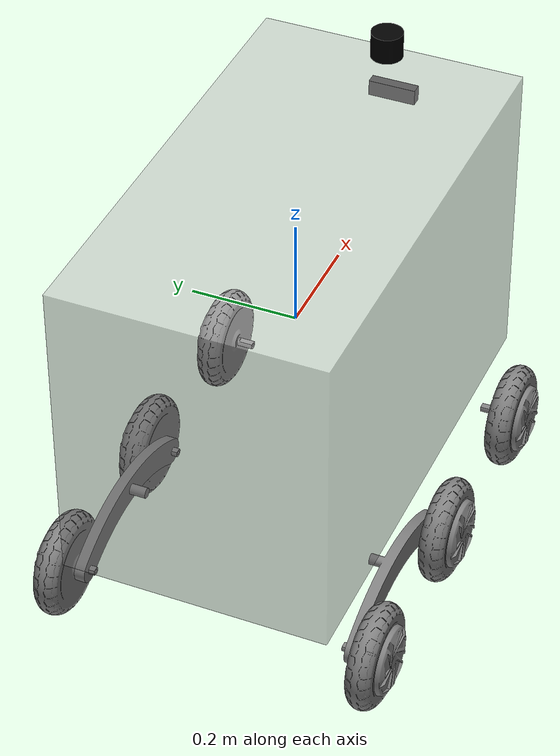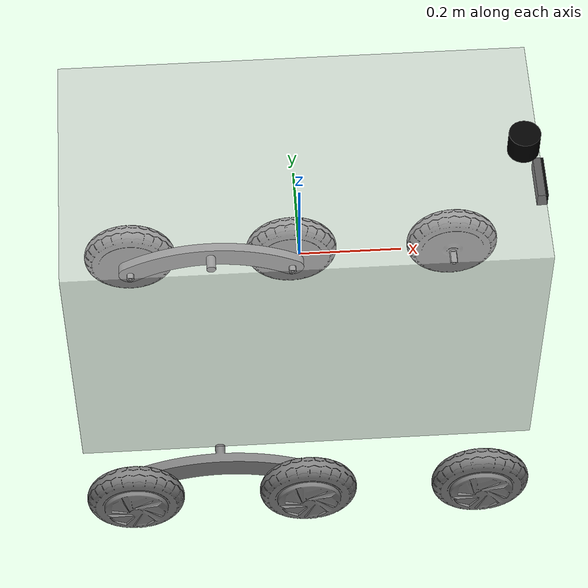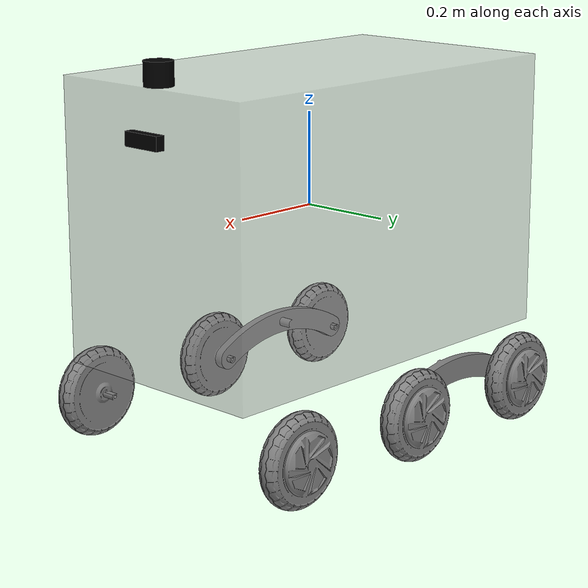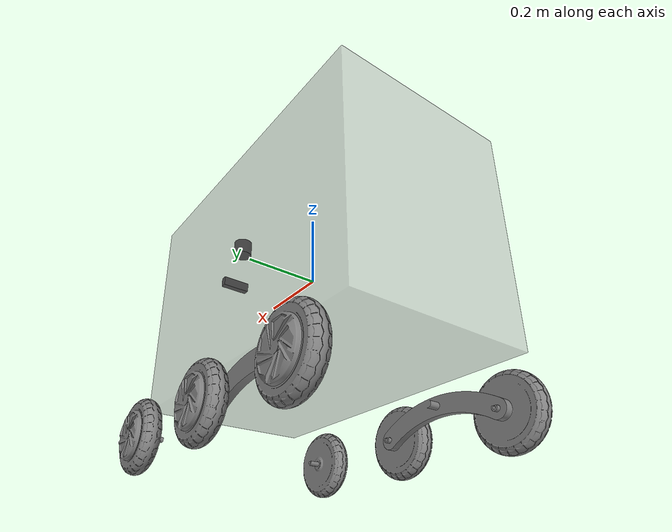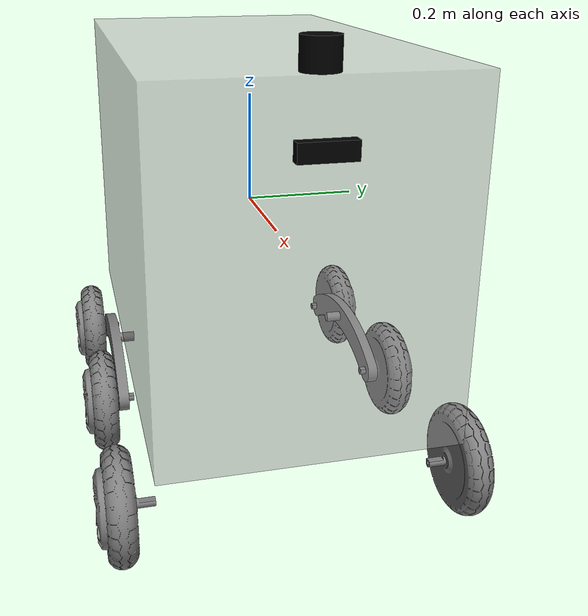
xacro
<?xml version="1.0"?>
<robot name="delivery_robot" xmlns:xacro="http://ros.org/wiki/xacro">

  <!-- Właściwości -->
  <xacro:property name="body_length" value="0.9"/>
  <xacro:property name="body_width" value="0.5"/>
  <xacro:property name="body_height" value="0.6"/>
  <xacro:property name="wheel_radius" value="0.1016"/>
  <xacro:property name="wheel_width" value="0.05"/>
  <xacro:property name="wheel_gap" value="0.35"/>
  <xacro:property name="wheel_y_offset" value="${0.5 * body_width + 0.05}"/>
  <xacro:property name="z_offset" value="${-0.5 * body_height - 0.1}"/>
  <xacro:property name="wheel_mass" value="3.0"/>
  <xacro:property name="boxygo_description_pkg" value="$(find boxygo_description)"/>
  <xacro:property name="boxygo_controllers_pkg" value="$(find boxygo_controllers)"/>

  <!-- Materiały -->
  <material name="black"><color rgba="0 0 0 1"/></material>
  <material name="white"><color rgba="0.7 0.7 0.7 0.5"/></material>
  <material name="grey"><color rgba="0.5 0.5 0.5 1"/></material>

  <!-- Korpus -->
  <link name="base_link">
    <visual>
      <geometry>
        <box size="${body_length} ${body_width} ${body_height}"/>
      </geometry>
      <material name="white"/>
    </visual>
    <collision>
      <geometry>
        <box size="${body_length} ${body_width} ${body_height}"/>
      </geometry>
    </collision>
    <inertial>
      <mass value="20"/>
      <inertia ixx="1" ixy="0" ixz="0" iyy="1" iyz="0" izz="1"/>
    </inertial>
  </link>

  <!-- IMU sensor -->
  <link name="imu_link">
    <inertial>
      <mass value="0.01"/>
      <origin xyz="0 0 0" rpy="0 0 0"/>
      <inertia ixx="1e-5" ixy="0" ixz="0" iyy="1e-5" iyz="0" izz="1e-5"/>
    </inertial>
  </link>
  <joint name="imu_joint" type="fixed">
    <parent link="base_link"/>
    <child link="imu_link"/>
    <origin xyz="0 0 ${body_height/2}" rpy="0 0 0"/>
  </joint>

  <gazebo reference="imu_link">
    <sensor type="imu" name="imu_sensor">
      <always_on>true</always_on>
      <update_rate>60.0</update_rate>
      <imu>
        <noise>
          <angular_velocity>
            <type>gaussian</type>
            <mean>0.0</mean>
            <stddev>0.001</stddev>
          </angular_velocity>
          <linear_acceleration>
            <type>gaussian</type>
            <mean>0.0</mean>
            <stddev>0.001</stddev>
          </linear_acceleration>
        </noise>
      </imu>
      <plugin name="imu_plugin" filename="libgazebo_ros_imu_sensor.so">
        <ros>
          <namespace>/</namespace>
          <remapping>~/out:=imu/data</remapping>
        </ros>
        <frame_name>imu_link</frame_name>
        <orientation>0.01 0 0  0 0.01 0  0 0 0.01</orientation>
        <angular_velocity>0.01 0 0  0 0.01 0  0 0 0.01</angular_velocity>
        <linear_acceleration>999 0 0  0 999 0  0 0 999</linear_acceleration>
      </plugin>
    </sensor>
  </gazebo>

  <!-- footprint-->
  <joint name="base_footprint_joint" type="fixed">
        <parent link="base_link"/>
        <child link="base_footprint"/>
        <origin xyz="0 0 0" rpy="0 0 0"/>
    </joint>

    <link name="base_footprint">
    </link>

    <!-- Kamera -->
  <link name="depth_camera_link">
    <visual>
      <geometry>
        <box size="0.02 0.09 0.03"/>
      </geometry>
      <material name="black"/>
    </visual>
    <collision>
      <geometry>
        <box size="0.02 0.09 0.03"/>
      </geometry>
    </collision>
    <inertial>
      <mass value="0.1"/>
      <inertia ixx="0.0001" ixy="0.0" ixz="0.0" iyy="0.0001" iyz="0.0" izz="0.0001"/>
    </inertial>
  </link>

  <joint name="depth_camera_joint" type="fixed">
    <parent link="base_link"/>
    <child link="depth_camera_link"/>
    <origin xyz="${body_length/2 + 0.01} 0 ${body_height/2 - 0.1}" rpy="0 0 0"/>
  </joint>

  <joint name="depth_camera_optical_joint" type="fixed">
    <parent link="depth_camera_link"/>
    <child link="depth_camera_link_optical"/>
    <origin xyz="0 0 0" rpy="-1.5708 0 -1.5708"/> <!-- -pi/2 in radians -->
  </joint>

  <link name="depth_camera_link_optical"/>

  <gazebo reference="depth_camera_link">
    <sensor name="depth_camera" type="depth">
      <pose>0 0 0 0 0 0</pose>
      <visualize>true</visualize>
      <update_rate>60.0</update_rate>
      <camera>
        <horizontal_fov>1.39626</horizontal_fov>
        <image>
          <width>640</width>
          <height>480</height>
          <format>B8G8R8</format>
        </image>
        <clip>
          <near>0.1</near>
          <far>10.0</far>
        </clip>
      </camera>
      <plugin name="depth_camera_controller" filename="libgazebo_ros_camera.so">
        <camera_name>depth_camera</camera_name>
        <frame_name>depth_camera_link_optical</frame_name>
        <min_depth>0.1</min_depth>
        <max_depth>100.0</max_depth>
      </plugin>
    </sensor>
  </gazebo>

    <!-- Lidar 2D -->
  <link name="lidar_link">
    <visual>
      <geometry>
        <cylinder length="0.05" radius="0.03"/>
      </geometry>
      <material name="black"/>
    </visual>
    <collision>
      <geometry>
        <cylinder length="0.05" radius="0.03"/>
      </geometry>
    </collision>
    <inertial>
      <mass value="0.2"/>
      <inertia ixx="0.0001" ixy="0" ixz="0" iyy="0.0001" iyz="0" izz="0.0001"/>
    </inertial>
  </link>

  <joint name="lidar_joint" type="fixed">
    <parent link="base_link"/>
    <child link="lidar_link"/>
    <origin xyz="${body_length/2 - 0.03} 0 ${body_height/2 + 0.025}" rpy="0 0 0"/>
  </joint>

  <gazebo reference="lidar_link">
    <sensor name="lidar_sensor" type="ray">
      <always_on>true</always_on>
      <update_rate>60.0</update_rate>
      <visualize>true</visualize>
      <ray>
        <scan>
          <horizontal>
            <samples>360</samples>
            <resolution>1</resolution>
            <min_angle>-3.14159</min_angle>
            <max_angle>3.14159</max_angle>
          </horizontal>
        </scan>
        <range>
          <min>0.3</min>
          <max>12</max>
          <resolution>0.01</resolution>
        </range>
        <noise>
          <type>gaussian</type>
          <mean>0.0</mean>
          <stddev>0.01</stddev>
        </noise>
      </ray>
      <plugin name="gazebo_ros_laser" filename="libgazebo_ros_ray_sensor.so">
        <topicName>scan</topicName>
        <ros>
            <argument>~/out:=scan</argument>
        </ros>
        <output_type>sensor_msgs/LaserScan</output_type>
        <frameName>lidar_link</frameName>
      </plugin>
    </sensor>
  </gazebo>

  <link name="left_rocker_beam">
    <inertial>
      <mass value="0.8"/>
      <inertia ixx="0.01" iyy="0.01" izz="0.01" ixy="0" ixz="0" iyz="0"/>
    </inertial>
    <visual>
      <geometry>
        <mesh filename="file://${boxygo_description_pkg}/meshes/rocker_model.stl" scale="0.001 0.001 0.001"/>
      </geometry>
      <origin xyz="0 0 0" rpy="0 0 0"/>
      <material name="grey"/>
    </visual>
    <collision>
      <geometry>
        <mesh filename="file://${boxygo_description_pkg}/meshes/rocker_model.stl" scale="0.001 0.001 0.001"/>
      </geometry>
      <origin xyz="0 0 0" rpy="0 0 0"/>
    </collision>
  </link>

  <joint name="left_rocker_beam_joint" type="continuous">
    <parent link="base_link"/>
    <child link="left_rocker_beam"/>
    <origin xyz="-0.175 ${wheel_y_offset} ${z_offset}" rpy="0 0 0"/>
    <axis xyz="0 1 0"/>
    <limit effort="10.0" velocity="10.0"/>
    <dynamics damping="0.1" friction="0.1"/>
  </joint>

  <link name="right_rocker_beam">
  <inertial>
    <mass value="0.8"/>
    <inertia ixx="0.01" iyy="0.01" izz="0.01" ixy="0" ixz="0" iyz="0"/>
  </inertial>
  <visual>
    <geometry>
      <mesh filename="file://${boxygo_description_pkg}/meshes/rocker_model.stl" scale="0.001 0.001 0.001"/>
    </geometry>
    <origin xyz="0 0 0" rpy="0 0 ${math.pi}"/>
    <material name="grey"/>
  </visual>
  <collision>
    <geometry>
      <mesh filename="file://${boxygo_description_pkg}/meshes/rocker_model.stl" scale="0.001 0.001 0.001"/>
    </geometry>
    <origin xyz="0 0 0" rpy="0 0 ${math.pi}"/>
  </collision>
</link>
<joint name="right_rocker_beam_joint" type="continuous">
  <parent link="base_link"/>
  <child link="right_rocker_beam"/>
  <origin xyz="-0.175 ${-wheel_y_offset} ${z_offset}" rpy="0 0 0"/>
  <axis xyz="0 1 0"/>
  <limit effort="10.0" velocity="10.0"/>
  <dynamics damping="0.1" friction="0.1"/>
</joint>

<xacro:macro name="wheel_universal" params="side parent_link wheel_side_sign index x_offset y_offset z_offset">
  <xacro:property name="ixx" value="${(1.0/12.0) * wheel_mass * (3 * wheel_radius**2 + wheel_width**2)}"/>
  <xacro:property name="izz" value="${0.5 * wheel_mass * wheel_radius**2}"/>
  <link name="${side}_wheel_${index}">
    <inertial>
      <mass value="${wheel_mass}"/>
      <inertia ixx="${ixx}" iyy="${ixx}" izz="${izz}" ixy="0.0" ixz="0.0" iyz="0.0"/>
    </inertial>
    <visual>
      <geometry>
        <mesh filename="file://${boxygo_description_pkg}/meshes/hov_wheel_short_look.stl" scale="0.001 0.001 0.001"/>
      </geometry>
      <origin xyz="0 0 0" rpy="0 0 ${wheel_side_sign * math.pi}"/>
      <material name="grey"/>
    </visual>
    <collision>
      <geometry>
        <mesh filename="file://${boxygo_description_pkg}/meshes/hov_wheel_short_look.stl" scale="0.001 0.001 0.001"/>
      </geometry>
      <origin xyz="0 0 0" rpy="0 0 ${wheel_side_sign * math.pi}"/>
    </collision>
  </link>
  <gazebo reference="${side}_wheel_${index}">
    <mu1>5.0</mu1>
    <mu2>5.0</mu2>
    <kp>100000.0</kp>
    <kd>10.0</kd>
    <minDepth>0.001</minDepth>
    <maxVel>0.1</maxVel>
  </gazebo>
  <joint name="${side}_wheel_${index}_joint" type="continuous">
    <parent link="${parent_link}"/>
    <child link="${side}_wheel_${index}"/>
    <origin xyz="${x_offset} ${y_offset} ${z_offset}" rpy="0 0 0"/>
    <axis xyz="0 1 0"/>
    <limit effort="10.0" velocity="10.0"/>
    <dynamics damping="0.1" friction="0.1"/>
  </joint>
  <transmission name="${side}_wheel_${index}_trans">
    <type>transmission_interface/SimpleTransmission</type>
    <joint name="${side}_wheel_${index}_joint">
      <hardwareInterface>hardware_interface/VelocityJointInterface</hardwareInterface>
    </joint>
    <actuator name="${side}_wheel_${index}_motor">
      <hardwareInterface>hardware_interface/VelocityJointInterface</hardwareInterface>
      <mechanicalReduction>1</mechanicalReduction>
    </actuator>
  </transmission>
</xacro:macro>

<!-- Koła LEWE: -->
<!-- 1. Koło przy base_link (lewa strona) -->
<xacro:wheel_universal
    side="left"
    parent_link="base_link"
    wheel_side_sign="0"
    index="1"
    x_offset="${wheel_gap}"
    y_offset="${wheel_y_offset}"
    z_offset="${z_offset}"/>

<!-- 2. Koło przy left_rocker_beam (lewa strona, środek) -->
<xacro:wheel_universal
    side="left"
    parent_link="left_rocker_beam"
    wheel_side_sign="0"
    index="2"
    x_offset="0.175"
    y_offset="0"
    z_offset="0"/>

<!-- 3. Koło przy left_rocker_beam (lewa strona, tył) -->
<xacro:wheel_universal
    side="left"
    parent_link="left_rocker_beam"
    wheel_side_sign="0"
    index="3"
    x_offset="-0.175"
    y_offset="0"
    z_offset="0"/>

<!-- Koła PRAWE: -->
<!-- 1. Koło przy base_link (prawa strona) -->
<xacro:wheel_universal
    side="right"
    parent_link="base_link"
    wheel_side_sign="1"
    index="1"
    x_offset="${wheel_gap}"
    y_offset="-${wheel_y_offset}"
    z_offset="${z_offset}"/>

<!-- 2. Koło przy right_rocker_beam (prawa strona, środek) -->
<xacro:wheel_universal
    side="right"
    parent_link="right_rocker_beam"
    wheel_side_sign="1"
    index="2"
    x_offset="0.175"
    y_offset="0"
    z_offset="0"/>

<!-- 3. Koło przy right_rocker_beam (prawa strona, tył) -->
<xacro:wheel_universal
    side="right"
    parent_link="right_rocker_beam"
    wheel_side_sign="1"
    index="3"
    x_offset="-0.175"
    y_offset="0"
    z_offset="0"/>

  <!-- Gazebo - kolor -->
  <gazebo reference="base_link">
    <material>Gazebo/White</material>
  </gazebo>
  <gazebo reference="left_wheel_1">
    <material>Gazebo/Grey</material>
  </gazebo>
  <gazebo reference="left_wheel_2">
    <material>Gazebo/Grey</material>
  </gazebo>
  <gazebo reference="left_wheel_3">
    <material>Gazebo/Grey</material>
  </gazebo>
  <gazebo reference="right_wheel_1">
    <material>Gazebo/Grey</material>
  </gazebo>
  <gazebo reference="right_wheel_2">
    <material>Gazebo/Grey</material>
  </gazebo>
  <gazebo reference="right_wheel_3">
    <material>Gazebo/Grey</material>
  </gazebo>
  <gazebo reference="lidar_link">
    <material>Gazebo/Black</material>
  </gazebo>
  <gazebo reference="depth_camera_link">
    <material>Gazebo/Black</material>
  </gazebo>

  <!-- Plugin ros2_control -->
  <gazebo>
    <plugin name="gazebo_ros2_control" filename="libgazebo_ros2_control.so">
      <update_rate>60</update_rate>
      <parameters>${boxygo_controllers_pkg}/config/diff_drive_controller.yaml</parameters>
    </plugin>
  </gazebo>

  <!-- ros2_control hardware -->
  <ros2_control name="BoxyGoSystem" type="system">
    <hardware>
      <plugin>gazebo_ros2_control/GazeboSystem</plugin>
    </hardware>
    <joint name="left_wheel_1_joint">
      <command_interface name="velocity"/>
      <state_interface name="position"/>
      <state_interface name="velocity"/>
    </joint>
    <joint name="left_wheel_2_joint">
      <command_interface name="velocity"/>
      <state_interface name="position"/>
      <state_interface name="velocity"/>
    </joint>
    <joint name="left_wheel_3_joint">
      <command_interface name="velocity"/>
      <state_interface name="position"/>
      <state_interface name="velocity"/>
    </joint>
    <joint name="right_wheel_1_joint">
      <command_interface name="velocity"/>
      <state_interface name="position"/>
      <state_interface name="velocity"/>
    </joint>
    <joint name="right_wheel_2_joint">
      <command_interface name="velocity"/>
      <state_interface name="position"/>
      <state_interface name="velocity"/>
    </joint>
    <joint name="right_wheel_3_joint">
      <command_interface name="velocity"/>
      <state_interface name="position"/>
      <state_interface name="velocity"/>
    </joint>
    <joint name="left_rocker_beam_joint">
      <command_interface name="position"/>
      <state_interface name="position"/>
      <state_interface name="velocity"/>
    </joint>
    <joint name="right_rocker_beam_joint">
      <command_interface name="position"/>
      <state_interface name="position"/>
      <state_interface name="velocity"/>
    </joint>
  </ros2_control>

</robot>
